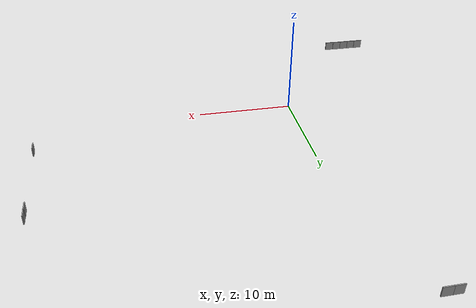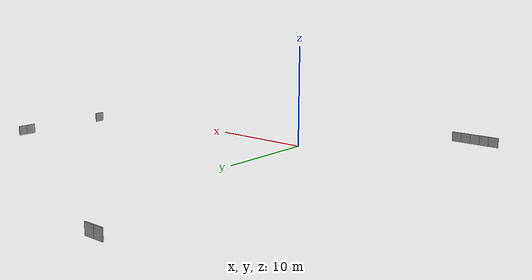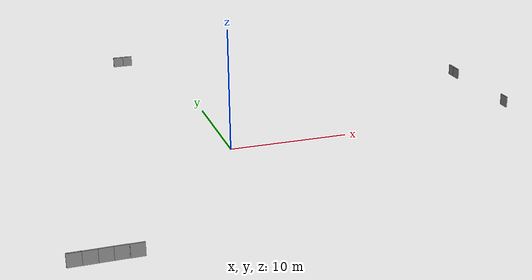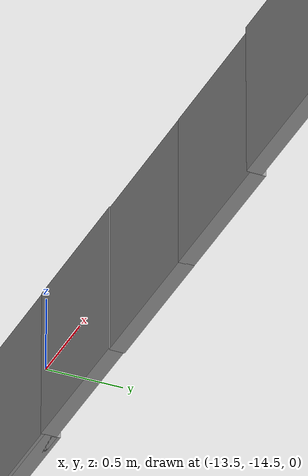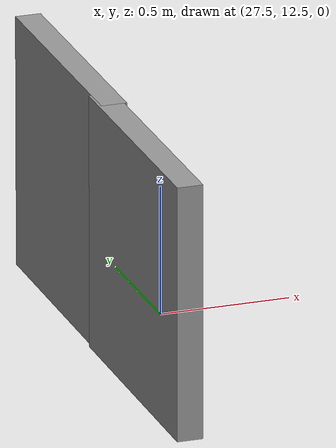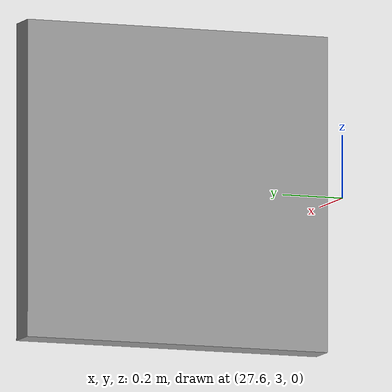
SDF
<?xml version='1.0'?>
<sdf version='1.6'>
  <model name='willow_doors'>
    <link name='link_0'>
      <inertial>
        <mass>1</mass>
        <inertia>
          <ixx>0.166667</ixx>
          <ixy>0</ixy>
          <ixz>0</ixz>
          <iyy>0.166667</iyy>
          <iyz>0</iyz>
          <izz>0.166667</izz>
        </inertia>
        <pose frame=''>0 0 0 0 -0 0</pose>
      </inertial>
      <pose frame=''>-9.96855 -14.5199 0 0 -0 0</pose>
      <gravity>1</gravity>
      <self_collide>0</self_collide>
      <kinematic>0</kinematic>
      <enable_wind>0</enable_wind>
      <visual name='visual'>
        <pose frame=''>0 0 0 0 -0 0</pose>
        <geometry>
          <box>
            <size>1 0.1 1</size>
          </box>
        </geometry>
        <material>
          <lighting>1</lighting>
          <script>
            <uri>file://media/materials/scripts/gazebo.material</uri>
            <name>Gazebo/Grey</name>
          </script>
          <shader type='vertex'>
            <normal_map>__default__</normal_map>
          </shader>
          <ambient>0.3 0.3 0.3 1</ambient>
          <diffuse>0.7 0.7 0.7 1</diffuse>
          <specular>0.01 0.01 0.01 1</specular>
          <emissive>0 0 0 1</emissive>
        </material>
        <transparency>0</transparency>
        <cast_shadows>1</cast_shadows>
      </visual>
      <collision name='collision'>
        <laser_retro>0</laser_retro>
        <max_contacts>10</max_contacts>
        <pose frame=''>0 0 0 0 -0 0</pose>
        <geometry>
          <box>
            <size>1 0.1 1</size>
          </box>
        </geometry>
        <surface>
          <friction>
            <ode>
              <mu>1</mu>
              <mu2>1</mu2>
              <fdir1>0 0 0</fdir1>
              <slip1>0</slip1>
              <slip2>0</slip2>
            </ode>
            <torsional>
              <coefficient>1</coefficient>
              <patch_radius>0</patch_radius>
              <surface_radius>0</surface_radius>
              <use_patch_radius>1</use_patch_radius>
              <ode>
                <slip>0</slip>
              </ode>
            </torsional>
          </friction>
          <bounce>
            <restitution_coefficient>0</restitution_coefficient>
            <threshold>1e+06</threshold>
          </bounce>
          <contact>
            <collide_without_contact>0</collide_without_contact>
            <collide_without_contact_bitmask>1</collide_without_contact_bitmask>
            <collide_bitmask>1</collide_bitmask>
            <ode>
              <soft_cfm>0</soft_cfm>
              <soft_erp>0.2</soft_erp>
              <kp>1e+13</kp>
              <kd>1</kd>
              <max_vel>0.01</max_vel>
              <min_depth>0</min_depth>
            </ode>
            <bullet>
              <split_impulse>1</split_impulse>
              <split_impulse_penetration_threshold>-0.01</split_impulse_penetration_threshold>
              <soft_cfm>0</soft_cfm>
              <soft_erp>0.2</soft_erp>
              <kp>1e+13</kp>
              <kd>1</kd>
            </bullet>
          </contact>
        </surface>
      </collision>
    </link>
    <link name='link_0_clone'>
      <inertial>
        <mass>1</mass>
        <inertia>
          <ixx>0.166667</ixx>
          <ixy>0</ixy>
          <ixz>0</ixz>
          <iyy>0.166667</iyy>
          <iyz>0</iyz>
          <izz>0.166667</izz>
        </inertia>
        <pose frame=''>0 0 0 0 -0 0</pose>
      </inertial>
      <pose frame=''>-10.9725 -14.4961 0 0 -0 0</pose>
      <gravity>1</gravity>
      <self_collide>0</self_collide>
      <kinematic>0</kinematic>
      <enable_wind>0</enable_wind>
      <visual name='visual'>
        <pose frame=''>0 0 0 0 -0 0</pose>
        <geometry>
          <box>
            <size>1 0.1 1</size>
          </box>
        </geometry>
        <material>
          <lighting>1</lighting>
          <script>
            <uri>file://media/materials/scripts/gazebo.material</uri>
            <name>Gazebo/Grey</name>
          </script>
          <shader type='vertex'>
            <normal_map>__default__</normal_map>
          </shader>
          <ambient>0.3 0.3 0.3 1</ambient>
          <diffuse>0.7 0.7 0.7 1</diffuse>
          <specular>0.01 0.01 0.01 1</specular>
          <emissive>0 0 0 1</emissive>
        </material>
        <transparency>0</transparency>
        <cast_shadows>1</cast_shadows>
      </visual>
      <collision name='collision'>
        <laser_retro>0</laser_retro>
        <max_contacts>10</max_contacts>
        <pose frame=''>0 0 0 0 -0 0</pose>
        <geometry>
          <box>
            <size>1 0.1 1</size>
          </box>
        </geometry>
        <surface>
          <friction>
            <ode>
              <mu>1</mu>
              <mu2>1</mu2>
              <fdir1>0 0 0</fdir1>
              <slip1>0</slip1>
              <slip2>0</slip2>
            </ode>
            <torsional>
              <coefficient>1</coefficient>
              <patch_radius>0</patch_radius>
              <surface_radius>0</surface_radius>
              <use_patch_radius>1</use_patch_radius>
              <ode>
                <slip>0</slip>
              </ode>
            </torsional>
          </friction>
          <bounce>
            <restitution_coefficient>0</restitution_coefficient>
            <threshold>1e+06</threshold>
          </bounce>
          <contact>
            <collide_without_contact>0</collide_without_contact>
            <collide_without_contact_bitmask>1</collide_without_contact_bitmask>
            <collide_bitmask>1</collide_bitmask>
            <ode>
              <soft_cfm>0</soft_cfm>
              <soft_erp>0.2</soft_erp>
              <kp>1e+13</kp>
              <kd>1</kd>
              <max_vel>0.01</max_vel>
              <min_depth>0</min_depth>
            </ode>
            <bullet>
              <split_impulse>1</split_impulse>
              <split_impulse_penetration_threshold>-0.01</split_impulse_penetration_threshold>
              <soft_cfm>0</soft_cfm>
              <soft_erp>0.2</soft_erp>
              <kp>1e+13</kp>
              <kd>1</kd>
            </bullet>
          </contact>
        </surface>
      </collision>
    </link>
    <link name='link_0_clone_0'>
      <inertial>
        <mass>1</mass>
        <inertia>
          <ixx>0.166667</ixx>
          <ixy>0</ixy>
          <ixz>0</ixz>
          <iyy>0.166667</iyy>
          <iyz>0</iyz>
          <izz>0.166667</izz>
        </inertia>
        <pose frame=''>0 0 0 0 -0 0</pose>
      </inertial>
      <pose frame=''>-11.9654 -14.4947 0 0 -0 0</pose>
      <gravity>1</gravity>
      <self_collide>0</self_collide>
      <kinematic>0</kinematic>
      <enable_wind>0</enable_wind>
      <visual name='visual'>
        <pose frame=''>0 0 0 0 -0 0</pose>
        <geometry>
          <box>
            <size>1 0.1 1</size>
          </box>
        </geometry>
        <material>
          <lighting>1</lighting>
          <script>
            <uri>file://media/materials/scripts/gazebo.material</uri>
            <name>Gazebo/Grey</name>
          </script>
          <shader type='vertex'>
            <normal_map>__default__</normal_map>
          </shader>
          <ambient>0.3 0.3 0.3 1</ambient>
          <diffuse>0.7 0.7 0.7 1</diffuse>
          <specular>0.01 0.01 0.01 1</specular>
          <emissive>0 0 0 1</emissive>
        </material>
        <transparency>0</transparency>
        <cast_shadows>1</cast_shadows>
      </visual>
      <collision name='collision'>
        <laser_retro>0</laser_retro>
        <max_contacts>10</max_contacts>
        <pose frame=''>0 0 0 0 -0 0</pose>
        <geometry>
          <box>
            <size>1 0.1 1</size>
          </box>
        </geometry>
        <surface>
          <friction>
            <ode>
              <mu>1</mu>
              <mu2>1</mu2>
              <fdir1>0 0 0</fdir1>
              <slip1>0</slip1>
              <slip2>0</slip2>
            </ode>
            <torsional>
              <coefficient>1</coefficient>
              <patch_radius>0</patch_radius>
              <surface_radius>0</surface_radius>
              <use_patch_radius>1</use_patch_radius>
              <ode>
                <slip>0</slip>
              </ode>
            </torsional>
          </friction>
          <bounce>
            <restitution_coefficient>0</restitution_coefficient>
            <threshold>1e+06</threshold>
          </bounce>
          <contact>
            <collide_without_contact>0</collide_without_contact>
            <collide_without_contact_bitmask>1</collide_without_contact_bitmask>
            <collide_bitmask>1</collide_bitmask>
            <ode>
              <soft_cfm>0</soft_cfm>
              <soft_erp>0.2</soft_erp>
              <kp>1e+13</kp>
              <kd>1</kd>
              <max_vel>0.01</max_vel>
              <min_depth>0</min_depth>
            </ode>
            <bullet>
              <split_impulse>1</split_impulse>
              <split_impulse_penetration_threshold>-0.01</split_impulse_penetration_threshold>
              <soft_cfm>0</soft_cfm>
              <soft_erp>0.2</soft_erp>
              <kp>1e+13</kp>
              <kd>1</kd>
            </bullet>
          </contact>
        </surface>
      </collision>
    </link>
    <link name='link_0_clone_1'>
      <inertial>
        <mass>1</mass>
        <inertia>
          <ixx>0.166667</ixx>
          <ixy>0</ixy>
          <ixz>0</ixz>
          <iyy>0.166667</iyy>
          <iyz>0</iyz>
          <izz>0.166667</izz>
        </inertia>
        <pose frame=''>0 0 0 0 -0 0</pose>
      </inertial>
      <pose frame=''>-12.953 -14.5008 0 0 -0 0</pose>
      <gravity>1</gravity>
      <self_collide>0</self_collide>
      <kinematic>0</kinematic>
      <enable_wind>0</enable_wind>
      <visual name='visual'>
        <pose frame=''>0 0 0 0 -0 0</pose>
        <geometry>
          <box>
            <size>1 0.1 1</size>
          </box>
        </geometry>
        <material>
          <lighting>1</lighting>
          <script>
            <uri>file://media/materials/scripts/gazebo.material</uri>
            <name>Gazebo/Grey</name>
          </script>
          <shader type='vertex'>
            <normal_map>__default__</normal_map>
          </shader>
          <ambient>0.3 0.3 0.3 1</ambient>
          <diffuse>0.7 0.7 0.7 1</diffuse>
          <specular>0.01 0.01 0.01 1</specular>
          <emissive>0 0 0 1</emissive>
        </material>
        <transparency>0</transparency>
        <cast_shadows>1</cast_shadows>
      </visual>
      <collision name='collision'>
        <laser_retro>0</laser_retro>
        <max_contacts>10</max_contacts>
        <pose frame=''>0 0 0 0 -0 0</pose>
        <geometry>
          <box>
            <size>1 0.1 1</size>
          </box>
        </geometry>
        <surface>
          <friction>
            <ode>
              <mu>1</mu>
              <mu2>1</mu2>
              <fdir1>0 0 0</fdir1>
              <slip1>0</slip1>
              <slip2>0</slip2>
            </ode>
            <torsional>
              <coefficient>1</coefficient>
              <patch_radius>0</patch_radius>
              <surface_radius>0</surface_radius>
              <use_patch_radius>1</use_patch_radius>
              <ode>
                <slip>0</slip>
              </ode>
            </torsional>
          </friction>
          <bounce>
            <restitution_coefficient>0</restitution_coefficient>
            <threshold>1e+06</threshold>
          </bounce>
          <contact>
            <collide_without_contact>0</collide_without_contact>
            <collide_without_contact_bitmask>1</collide_without_contact_bitmask>
            <collide_bitmask>1</collide_bitmask>
            <ode>
              <soft_cfm>0</soft_cfm>
              <soft_erp>0.2</soft_erp>
              <kp>1e+13</kp>
              <kd>1</kd>
              <max_vel>0.01</max_vel>
              <min_depth>0</min_depth>
            </ode>
            <bullet>
              <split_impulse>1</split_impulse>
              <split_impulse_penetration_threshold>-0.01</split_impulse_penetration_threshold>
              <soft_cfm>0</soft_cfm>
              <soft_erp>0.2</soft_erp>
              <kp>1e+13</kp>
              <kd>1</kd>
            </bullet>
          </contact>
        </surface>
      </collision>
    </link>
    <link name='link_0_clone_2'>
      <inertial>
        <mass>1</mass>
        <inertia>
          <ixx>0.166667</ixx>
          <ixy>0</ixy>
          <ixz>0</ixz>
          <iyy>0.166667</iyy>
          <iyz>0</iyz>
          <izz>0.166667</izz>
        </inertia>
        <pose frame=''>0 0 0 0 -0 0</pose>
      </inertial>
      <pose frame=''>-13.9467 -14.4763 0 0 -0 0</pose>
      <gravity>1</gravity>
      <self_collide>0</self_collide>
      <kinematic>0</kinematic>
      <enable_wind>0</enable_wind>
      <visual name='visual'>
        <pose frame=''>0 0 0 0 -0 0</pose>
        <geometry>
          <box>
            <size>1 0.1 1</size>
          </box>
        </geometry>
        <material>
          <lighting>1</lighting>
          <script>
            <uri>file://media/materials/scripts/gazebo.material</uri>
            <name>Gazebo/Grey</name>
          </script>
          <shader type='vertex'>
            <normal_map>__default__</normal_map>
          </shader>
          <ambient>0.3 0.3 0.3 1</ambient>
          <diffuse>0.7 0.7 0.7 1</diffuse>
          <specular>0.01 0.01 0.01 1</specular>
          <emissive>0 0 0 1</emissive>
        </material>
        <transparency>0</transparency>
        <cast_shadows>1</cast_shadows>
      </visual>
      <collision name='collision'>
        <laser_retro>0</laser_retro>
        <max_contacts>10</max_contacts>
        <pose frame=''>0 0 0 0 -0 0</pose>
        <geometry>
          <box>
            <size>1 0.1 1</size>
          </box>
        </geometry>
        <surface>
          <friction>
            <ode>
              <mu>1</mu>
              <mu2>1</mu2>
              <fdir1>0 0 0</fdir1>
              <slip1>0</slip1>
              <slip2>0</slip2>
            </ode>
            <torsional>
              <coefficient>1</coefficient>
              <patch_radius>0</patch_radius>
              <surface_radius>0</surface_radius>
              <use_patch_radius>1</use_patch_radius>
              <ode>
                <slip>0</slip>
              </ode>
            </torsional>
          </friction>
          <bounce>
            <restitution_coefficient>0</restitution_coefficient>
            <threshold>1e+06</threshold>
          </bounce>
          <contact>
            <collide_without_contact>0</collide_without_contact>
            <collide_without_contact_bitmask>1</collide_without_contact_bitmask>
            <collide_bitmask>1</collide_bitmask>
            <ode>
              <soft_cfm>0</soft_cfm>
              <soft_erp>0.2</soft_erp>
              <kp>1e+13</kp>
              <kd>1</kd>
              <max_vel>0.01</max_vel>
              <min_depth>0</min_depth>
            </ode>
            <bullet>
              <split_impulse>1</split_impulse>
              <split_impulse_penetration_threshold>-0.01</split_impulse_penetration_threshold>
              <soft_cfm>0</soft_cfm>
              <soft_erp>0.2</soft_erp>
              <kp>1e+13</kp>
              <kd>1</kd>
            </bullet>
          </contact>
        </surface>
      </collision>
    </link>
    <link name='link_0_clone_3'>
      <inertial>
        <mass>1</mass>
        <inertia>
          <ixx>0.166667</ixx>
          <ixy>0</ixy>
          <ixz>0</ixz>
          <iyy>0.166667</iyy>
          <iyz>0</iyz>
          <izz>0.166667</izz>
        </inertia>
        <pose frame=''>0 0 0 0 -0 0</pose>
      </inertial>
      <pose frame=''>-13.9502 -14.4963 0 0 -0 0</pose>
      <gravity>1</gravity>
      <self_collide>0</self_collide>
      <kinematic>0</kinematic>
      <enable_wind>0</enable_wind>
      <visual name='visual'>
        <pose frame=''>0 0 0 0 -0 0</pose>
        <geometry>
          <box>
            <size>1 0.1 1</size>
          </box>
        </geometry>
        <material>
          <lighting>1</lighting>
          <script>
            <uri>file://media/materials/scripts/gazebo.material</uri>
            <name>Gazebo/Grey</name>
          </script>
          <shader type='vertex'>
            <normal_map>__default__</normal_map>
          </shader>
          <ambient>0.3 0.3 0.3 1</ambient>
          <diffuse>0.7 0.7 0.7 1</diffuse>
          <specular>0.01 0.01 0.01 1</specular>
          <emissive>0 0 0 1</emissive>
        </material>
        <transparency>0</transparency>
        <cast_shadows>1</cast_shadows>
      </visual>
      <collision name='collision'>
        <laser_retro>0</laser_retro>
        <max_contacts>10</max_contacts>
        <pose frame=''>0 0 0 0 -0 0</pose>
        <geometry>
          <box>
            <size>1 0.1 1</size>
          </box>
        </geometry>
        <surface>
          <friction>
            <ode>
              <mu>1</mu>
              <mu2>1</mu2>
              <fdir1>0 0 0</fdir1>
              <slip1>0</slip1>
              <slip2>0</slip2>
            </ode>
            <torsional>
              <coefficient>1</coefficient>
              <patch_radius>0</patch_radius>
              <surface_radius>0</surface_radius>
              <use_patch_radius>1</use_patch_radius>
              <ode>
                <slip>0</slip>
              </ode>
            </torsional>
          </friction>
          <bounce>
            <restitution_coefficient>0</restitution_coefficient>
            <threshold>1e+06</threshold>
          </bounce>
          <contact>
            <collide_without_contact>0</collide_without_contact>
            <collide_without_contact_bitmask>1</collide_without_contact_bitmask>
            <collide_bitmask>1</collide_bitmask>
            <ode>
              <soft_cfm>0</soft_cfm>
              <soft_erp>0.2</soft_erp>
              <kp>1e+13</kp>
              <kd>1</kd>
              <max_vel>0.01</max_vel>
              <min_depth>0</min_depth>
            </ode>
            <bullet>
              <split_impulse>1</split_impulse>
              <split_impulse_penetration_threshold>-0.01</split_impulse_penetration_threshold>
              <soft_cfm>0</soft_cfm>
              <soft_erp>0.2</soft_erp>
              <kp>1e+13</kp>
              <kd>1</kd>
            </bullet>
          </contact>
        </surface>
      </collision>
    </link>
    <link name='link_0_clone_4'>
      <inertial>
        <mass>1</mass>
        <inertia>
          <ixx>0.166667</ixx>
          <ixy>0</ixy>
          <ixz>0</ixz>
          <iyy>0.166667</iyy>
          <iyz>0</iyz>
          <izz>0.166667</izz>
        </inertia>
        <pose frame=''>0 0 0 0 -0 0</pose>
      </inertial>
      <pose frame=''>27.5955 3.57108 0 0 -0 1.5708</pose>
      <gravity>1</gravity>
      <self_collide>0</self_collide>
      <kinematic>0</kinematic>
      <enable_wind>0</enable_wind>
      <visual name='visual'>
        <pose frame=''>0 0 0 0 -0 0</pose>
        <geometry>
          <box>
            <size>1 0.1 1</size>
          </box>
        </geometry>
        <material>
          <lighting>1</lighting>
          <script>
            <uri>file://media/materials/scripts/gazebo.material</uri>
            <name>Gazebo/Grey</name>
          </script>
          <shader type='vertex'>
            <normal_map>__default__</normal_map>
          </shader>
          <ambient>0.3 0.3 0.3 1</ambient>
          <diffuse>0.7 0.7 0.7 1</diffuse>
          <specular>0.01 0.01 0.01 1</specular>
          <emissive>0 0 0 1</emissive>
        </material>
        <transparency>0</transparency>
        <cast_shadows>1</cast_shadows>
      </visual>
      <collision name='collision'>
        <laser_retro>0</laser_retro>
        <max_contacts>10</max_contacts>
        <pose frame=''>0 0 0 0 -0 0</pose>
        <geometry>
          <box>
            <size>1 0.1 1</size>
          </box>
        </geometry>
        <surface>
          <friction>
            <ode>
              <mu>1</mu>
              <mu2>1</mu2>
              <fdir1>0 0 0</fdir1>
              <slip1>0</slip1>
              <slip2>0</slip2>
            </ode>
            <torsional>
              <coefficient>1</coefficient>
              <patch_radius>0</patch_radius>
              <surface_radius>0</surface_radius>
              <use_patch_radius>1</use_patch_radius>
              <ode>
                <slip>0</slip>
              </ode>
            </torsional>
          </friction>
          <bounce>
            <restitution_coefficient>0</restitution_coefficient>
            <threshold>1e+06</threshold>
          </bounce>
          <contact>
            <collide_without_contact>0</collide_without_contact>
            <collide_without_contact_bitmask>1</collide_without_contact_bitmask>
            <collide_bitmask>1</collide_bitmask>
            <ode>
              <soft_cfm>0</soft_cfm>
              <soft_erp>0.2</soft_erp>
              <kp>1e+13</kp>
              <kd>1</kd>
              <max_vel>0.01</max_vel>
              <min_depth>0</min_depth>
            </ode>
            <bullet>
              <split_impulse>1</split_impulse>
              <split_impulse_penetration_threshold>-0.01</split_impulse_penetration_threshold>
              <soft_cfm>0</soft_cfm>
              <soft_erp>0.2</soft_erp>
              <kp>1e+13</kp>
              <kd>1</kd>
            </bullet>
          </contact>
        </surface>
      </collision>
    </link>
    <link name='link_0_clone_4_clone'>
      <inertial>
        <mass>1</mass>
        <inertia>
          <ixx>0.166667</ixx>
          <ixy>0</ixy>
          <ixz>0</ixz>
          <iyy>0.166667</iyy>
          <iyz>0</iyz>
          <izz>0.166667</izz>
        </inertia>
        <pose frame=''>0 0 0 0 -0 0</pose>
      </inertial>
      <pose frame=''>27.6057 12.9704 0 0 -0 1.5708</pose>
      <gravity>1</gravity>
      <self_collide>0</self_collide>
      <kinematic>0</kinematic>
      <enable_wind>0</enable_wind>
      <visual name='visual'>
        <pose frame=''>0 0 0 0 -0 0</pose>
        <geometry>
          <box>
            <size>1 0.1 1</size>
          </box>
        </geometry>
        <material>
          <lighting>1</lighting>
          <script>
            <uri>file://media/materials/scripts/gazebo.material</uri>
            <name>Gazebo/Grey</name>
          </script>
          <shader type='vertex'>
            <normal_map>__default__</normal_map>
          </shader>
          <ambient>0.3 0.3 0.3 1</ambient>
          <diffuse>0.7 0.7 0.7 1</diffuse>
          <specular>0.01 0.01 0.01 1</specular>
          <emissive>0 0 0 1</emissive>
        </material>
        <transparency>0</transparency>
        <cast_shadows>1</cast_shadows>
      </visual>
      <collision name='collision'>
        <laser_retro>0</laser_retro>
        <max_contacts>10</max_contacts>
        <pose frame=''>0 0 0 0 -0 0</pose>
        <geometry>
          <box>
            <size>1 0.1 1</size>
          </box>
        </geometry>
        <surface>
          <friction>
            <ode>
              <mu>1</mu>
              <mu2>1</mu2>
              <fdir1>0 0 0</fdir1>
              <slip1>0</slip1>
              <slip2>0</slip2>
            </ode>
            <torsional>
              <coefficient>1</coefficient>
              <patch_radius>0</patch_radius>
              <surface_radius>0</surface_radius>
              <use_patch_radius>1</use_patch_radius>
              <ode>
                <slip>0</slip>
              </ode>
            </torsional>
          </friction>
          <bounce>
            <restitution_coefficient>0</restitution_coefficient>
            <threshold>1e+06</threshold>
          </bounce>
          <contact>
            <collide_without_contact>0</collide_without_contact>
            <collide_without_contact_bitmask>1</collide_without_contact_bitmask>
            <collide_bitmask>1</collide_bitmask>
            <ode>
              <soft_cfm>0</soft_cfm>
              <soft_erp>0.2</soft_erp>
              <kp>1e+13</kp>
              <kd>1</kd>
              <max_vel>0.01</max_vel>
              <min_depth>0</min_depth>
            </ode>
            <bullet>
              <split_impulse>1</split_impulse>
              <split_impulse_penetration_threshold>-0.01</split_impulse_penetration_threshold>
              <soft_cfm>0</soft_cfm>
              <soft_erp>0.2</soft_erp>
              <kp>1e+13</kp>
              <kd>1</kd>
            </bullet>
          </contact>
        </surface>
      </collision>
    </link>
    <link name='link_0_clone_4_clone_0'>
      <inertial>
        <mass>1</mass>
        <inertia>
          <ixx>0.166667</ixx>
          <ixy>0</ixy>
          <ixz>0</ixz>
          <iyy>0.166667</iyy>
          <iyz>0</iyz>
          <izz>0.166667</izz>
        </inertia>
        <pose frame=''>0 0 0 0 -0 0</pose>
      </inertial>
      <pose frame=''>27.6163 13.8568 0 0 -0 1.5708</pose>
      <gravity>1</gravity>
      <self_collide>0</self_collide>
      <kinematic>0</kinematic>
      <enable_wind>0</enable_wind>
      <visual name='visual'>
        <pose frame=''>0 0 0 0 -0 0</pose>
        <geometry>
          <box>
            <size>1 0.1 1</size>
          </box>
        </geometry>
        <material>
          <lighting>1</lighting>
          <script>
            <uri>file://media/materials/scripts/gazebo.material</uri>
            <name>Gazebo/Grey</name>
          </script>
          <shader type='vertex'>
            <normal_map>__default__</normal_map>
          </shader>
          <ambient>0.3 0.3 0.3 1</ambient>
          <diffuse>0.7 0.7 0.7 1</diffuse>
          <specular>0.01 0.01 0.01 1</specular>
          <emissive>0 0 0 1</emissive>
        </material>
        <transparency>0</transparency>
        <cast_shadows>1</cast_shadows>
      </visual>
      <collision name='collision'>
        <laser_retro>0</laser_retro>
        <max_contacts>10</max_contacts>
        <pose frame=''>0 0 0 0 -0 0</pose>
        <geometry>
          <box>
            <size>1 0.1 1</size>
          </box>
        </geometry>
        <surface>
          <friction>
            <ode>
              <mu>1</mu>
              <mu2>1</mu2>
              <fdir1>0 0 0</fdir1>
              <slip1>0</slip1>
              <slip2>0</slip2>
            </ode>
            <torsional>
              <coefficient>1</coefficient>
              <patch_radius>0</patch_radius>
              <surface_radius>0</surface_radius>
              <use_patch_radius>1</use_patch_radius>
              <ode>
                <slip>0</slip>
              </ode>
            </torsional>
          </friction>
          <bounce>
            <restitution_coefficient>0</restitution_coefficient>
            <threshold>1e+06</threshold>
          </bounce>
          <contact>
            <collide_without_contact>0</collide_without_contact>
            <collide_without_contact_bitmask>1</collide_without_contact_bitmask>
            <collide_bitmask>1</collide_bitmask>
            <ode>
              <soft_cfm>0</soft_cfm>
              <soft_erp>0.2</soft_erp>
              <kp>1e+13</kp>
              <kd>1</kd>
              <max_vel>0.01</max_vel>
              <min_depth>0</min_depth>
            </ode>
            <bullet>
              <split_impulse>1</split_impulse>
              <split_impulse_penetration_threshold>-0.01</split_impulse_penetration_threshold>
              <soft_cfm>0</soft_cfm>
              <soft_erp>0.2</soft_erp>
              <kp>1e+13</kp>
              <kd>1</kd>
            </bullet>
          </contact>
        </surface>
      </collision>
    </link>
    <link name='link_0_clone_clone'>
      <inertial>
        <mass>1</mass>
        <inertia>
          <ixx>0.166667</ixx>
          <ixy>0</ixy>
          <ixz>0</ixz>
          <iyy>0.166667</iyy>
          <iyz>0</iyz>
          <izz>0.166667</izz>
        </inertia>
        <pose frame=''>0 0 0 0 -0 0</pose>
      </inertial>
      <pose frame=''>-4.98512 28.2895 0 0 -0 0</pose>
      <gravity>1</gravity>
      <self_collide>0</self_collide>
      <kinematic>0</kinematic>
      <enable_wind>0</enable_wind>
      <visual name='visual'>
        <pose frame=''>0 0 0 0 -0 0</pose>
        <geometry>
          <box>
            <size>1 0.1 1</size>
          </box>
        </geometry>
        <material>
          <lighting>1</lighting>
          <script>
            <uri>file://media/materials/scripts/gazebo.material</uri>
            <name>Gazebo/Grey</name>
          </script>
          <shader type='vertex'>
            <normal_map>__default__</normal_map>
          </shader>
          <ambient>0.3 0.3 0.3 1</ambient>
          <diffuse>0.7 0.7 0.7 1</diffuse>
          <specular>0.01 0.01 0.01 1</specular>
          <emissive>0 0 0 1</emissive>
        </material>
        <transparency>0</transparency>
        <cast_shadows>1</cast_shadows>
      </visual>
      <collision name='collision'>
        <laser_retro>0</laser_retro>
        <max_contacts>10</max_contacts>
        <pose frame=''>0 0 0 0 -0 0</pose>
        <geometry>
          <box>
            <size>1 0.1 1</size>
          </box>
        </geometry>
        <surface>
          <friction>
            <ode>
              <mu>1</mu>
              <mu2>1</mu2>
              <fdir1>0 0 0</fdir1>
              <slip1>0</slip1>
              <slip2>0</slip2>
            </ode>
            <torsional>
              <coefficient>1</coefficient>
              <patch_radius>0</patch_radius>
              <surface_radius>0</surface_radius>
              <use_patch_radius>1</use_patch_radius>
              <ode>
                <slip>0</slip>
              </ode>
            </torsional>
          </friction>
          <bounce>
            <restitution_coefficient>0</restitution_coefficient>
            <threshold>1e+06</threshold>
          </bounce>
          <contact>
            <collide_without_contact>0</collide_without_contact>
            <collide_without_contact_bitmask>1</collide_without_contact_bitmask>
            <collide_bitmask>1</collide_bitmask>
            <ode>
              <soft_cfm>0</soft_cfm>
              <soft_erp>0.2</soft_erp>
              <kp>1e+13</kp>
              <kd>1</kd>
              <max_vel>0.01</max_vel>
              <min_depth>0</min_depth>
            </ode>
            <bullet>
              <split_impulse>1</split_impulse>
              <split_impulse_penetration_threshold>-0.01</split_impulse_penetration_threshold>
              <soft_cfm>0</soft_cfm>
              <soft_erp>0.2</soft_erp>
              <kp>1e+13</kp>
              <kd>1</kd>
            </bullet>
          </contact>
        </surface>
      </collision>
    </link>
    <link name='link_0_clone_clone_0'>
      <inertial>
        <mass>1</mass>
        <inertia>
          <ixx>0.166667</ixx>
          <ixy>0</ixy>
          <ixz>0</ixz>
          <iyy>0.166667</iyy>
          <iyz>0</iyz>
          <izz>0.166667</izz>
        </inertia>
        <pose frame=''>0 0 0 0 -0 0</pose>
      </inertial>
      <pose frame=''>-4.07577 28.2965 0 0 -0 0</pose>
      <gravity>1</gravity>
      <self_collide>0</self_collide>
      <kinematic>0</kinematic>
      <enable_wind>0</enable_wind>
      <visual name='visual'>
        <pose frame=''>0 0 0 0 -0 0</pose>
        <geometry>
          <box>
            <size>1 0.1 1</size>
          </box>
        </geometry>
        <material>
          <lighting>1</lighting>
          <script>
            <uri>file://media/materials/scripts/gazebo.material</uri>
            <name>Gazebo/Grey</name>
          </script>
          <shader type='vertex'>
            <normal_map>__default__</normal_map>
          </shader>
          <ambient>0.3 0.3 0.3 1</ambient>
          <diffuse>0.7 0.7 0.7 1</diffuse>
          <specular>0.01 0.01 0.01 1</specular>
          <emissive>0 0 0 1</emissive>
        </material>
        <transparency>0</transparency>
        <cast_shadows>1</cast_shadows>
      </visual>
      <collision name='collision'>
        <laser_retro>0</laser_retro>
        <max_contacts>10</max_contacts>
        <pose frame=''>0 0 0 0 -0 0</pose>
        <geometry>
          <box>
            <size>1 0.1 1</size>
          </box>
        </geometry>
        <surface>
          <friction>
            <ode>
              <mu>1</mu>
              <mu2>1</mu2>
              <fdir1>0 0 0</fdir1>
              <slip1>0</slip1>
              <slip2>0</slip2>
            </ode>
            <torsional>
              <coefficient>1</coefficient>
              <patch_radius>0</patch_radius>
              <surface_radius>0</surface_radius>
              <use_patch_radius>1</use_patch_radius>
              <ode>
                <slip>0</slip>
              </ode>
            </torsional>
          </friction>
          <bounce>
            <restitution_coefficient>0</restitution_coefficient>
            <threshold>1e+06</threshold>
          </bounce>
          <contact>
            <collide_without_contact>0</collide_without_contact>
            <collide_without_contact_bitmask>1</collide_without_contact_bitmask>
            <collide_bitmask>1</collide_bitmask>
            <ode>
              <soft_cfm>0</soft_cfm>
              <soft_erp>0.2</soft_erp>
              <kp>1e+13</kp>
              <kd>1</kd>
              <max_vel>0.01</max_vel>
              <min_depth>0</min_depth>
            </ode>
            <bullet>
              <split_impulse>1</split_impulse>
              <split_impulse_penetration_threshold>-0.01</split_impulse_penetration_threshold>
              <soft_cfm>0</soft_cfm>
              <soft_erp>0.2</soft_erp>
              <kp>1e+13</kp>
              <kd>1</kd>
            </bullet>
          </contact>
        </surface>
      </collision>
    </link>
    <static>0</static>
    <allow_auto_disable>1</allow_auto_disable>
  </model>
</sdf>
